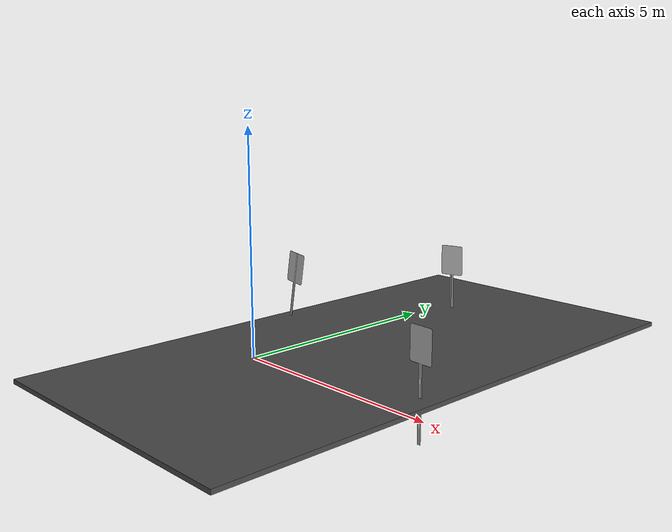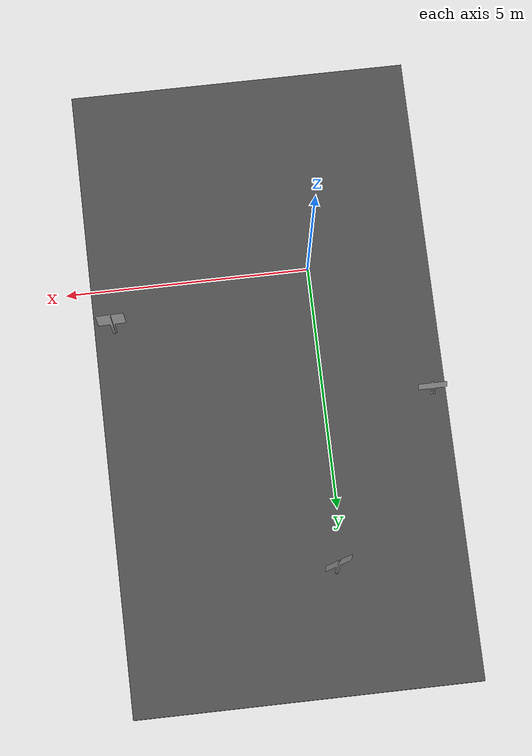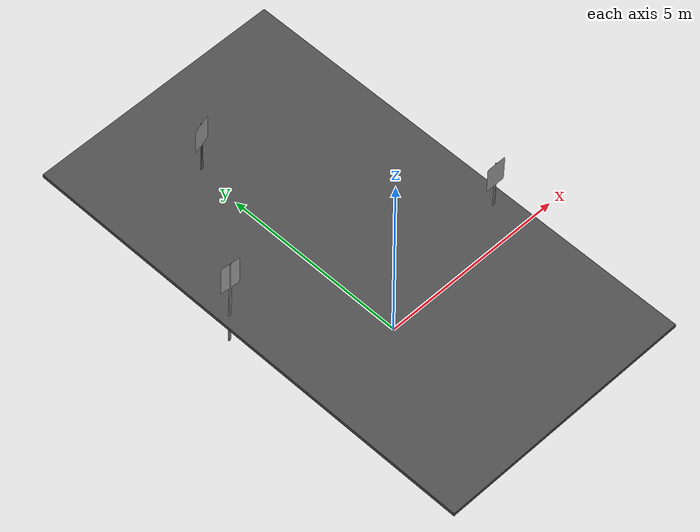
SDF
<sdf version="1.6">
 <world name="default">
  <model name="stop">
   <pose>0.144869 6.33621 -0.850014 -0.031677 -0 -2.83495</pose>
   <static>1</static>
   <link name="body">
    <visual name="visual">
     <geometry><mesh><uri>model://stop/stop.dae</uri><scale>1 1 1</scale></mesh></geometry>
    </visual>
    <collision name="collision">
     <geometry><mesh><uri>model://stop/stop.dae</uri><scale>1 1 1</scale></mesh></geometry>
    </collision>
   </link>
  </model>
  <model name="forward">
   <pose>4.06738 0.907538 -0.996922 0.017307 0.002352 1.07841</pose>
   <static>1</static>
   <link name="body">
    <visual name="visual">
     <geometry><mesh><uri>model://forward/forward.dae</uri><scale>1 1 1</scale></mesh></geometry>
    </visual>
    <collision name="collision">
     <geometry><mesh><uri>model://forward/forward.dae</uri><scale>1 1 1</scale></mesh></geometry>
    </collision>
   </link>
  </model>
  <model name="slow">
   <pose>-2.32327 2.7992 -0.887041 -0.061635 0.104768 -0.017798</pose>
   <static>1</static>
   <link name="body">
    <visual name="visual">
     <geometry><mesh><uri>model://slow/slow.dae</uri><scale>1 1 1</scale></mesh></geometry>
    </visual>
    <collision name="collision">
     <geometry><mesh><uri>model://slow/slow.dae</uri><scale>1 1 1</scale></mesh></geometry>
    </collision>
   </link>
  </model>
  <scene>
   <ambient>0 0 0 1</ambient>
   <shadows>0</shadows>
   <grid>0</grid>
   <background>0.7 0.7 0.7 1</background>
  </scene>
  <light name="sun" type="directional">
   <pose>0 0 10 0 -0 0</pose>
   <diffuse>0.8 0.8 0.8 1</diffuse>
   <specular>0.1 0.1 0.1 1</specular>
   <attenuation>
    <range>1000</range>
    <constant>0.9</constant>
    <linear>0.01</linear>
    <quadratic>0.001</quadratic>
   </attenuation>
   <direction>-0.5 0.5 -1</direction>
  </light>
  <model name="ground">
   <pose>0.99999 2.23028 -0.1 0 -0.007865 0</pose>
   <static>1</static>
   <link name="ground">
    <collision name="ground_coll"><geometry><box><size>7 13.02 0.1</size></box></geometry></collision>
    <visual name="ground_vis">
     <geometry><box><size>7 13.02 0.1</size></box></geometry>
     <material><script><uri>file://road.material</uri><name>road</name></script></material>
    </visual>
   </link>
  </model>
  <gravity>0 0 -9.8</gravity>
  <magnetic_field>6e-06 2.3e-05 -4.2e-05</magnetic_field>
  <atmosphere type="adiabatic"/>
  <physics name="default_physics" default="0" type="ode">
   <max_step_size>0.001</max_step_size>
   <real_time_factor>1</real_time_factor>
   <real_time_update_rate>1000</real_time_update_rate>
  </physics>
  <spherical_coordinates>
   <surface_model>EARTH_WGS84</surface_model>
   <latitude_deg>0</latitude_deg>
   <longitude_deg>0</longitude_deg>
   <elevation>0</elevation>
   <heading_deg>0</heading_deg>
  </spherical_coordinates>
  <light name="user_point_light_0" type="point">
   <pose>-2.26298 -4.11713 1 0 -0 0</pose>
   <diffuse>0.5 0.5 0.5 1</diffuse>
   <specular>0.1 0.1 0.1 1</specular>
   <attenuation>
    <range>20</range>
    <constant>0.5</constant>
    <linear>0.01</linear>
    <quadratic>0.001</quadratic>
   </attenuation>
   <cast_shadows>0</cast_shadows>
   <direction>0 0 -1</direction>
  </light>
  <light name="user_point_light_1" type="point">
   <pose>4.35234 -4.11964 1 0 -0 0</pose>
   <diffuse>0.5 0.5 0.5 1</diffuse>
   <specular>0.1 0.1 0.1 1</specular>
   <attenuation>
    <range>20</range>
    <constant>0.5</constant>
    <linear>0.01</linear>
    <quadratic>0.001</quadratic>
   </attenuation>
   <cast_shadows>0</cast_shadows>
   <direction>0 0 -1</direction>
  </light>
  <light name="user_point_light_2" type="point">
   <pose>-2.34731 8.40886 1 0 -0 0</pose>
   <diffuse>0.5 0.5 0.5 1</diffuse>
   <specular>0.1 0.1 0.1 1</specular>
   <attenuation>
    <range>20</range>
    <constant>0.5</constant>
    <linear>0.01</linear>
    <quadratic>0.001</quadratic>
   </attenuation>
   <cast_shadows>0</cast_shadows>
   <direction>0 0 -1</direction>
  </light>
  <light name="user_point_light_3" type="point">
   <pose>4.33912 8.35156 1 0 -0 0</pose>
   <diffuse>0.5 0.5 0.5 1</diffuse>
   <specular>0.1 0.1 0.1 1</specular>
   <attenuation>
    <range>20</range>
    <constant>0.5</constant>
    <linear>0.01</linear>
    <quadratic>0.001</quadratic>
   </attenuation>
   <cast_shadows>0</cast_shadows>
   <direction>0 0 -1</direction>
  </light>
 </world>
</sdf>
